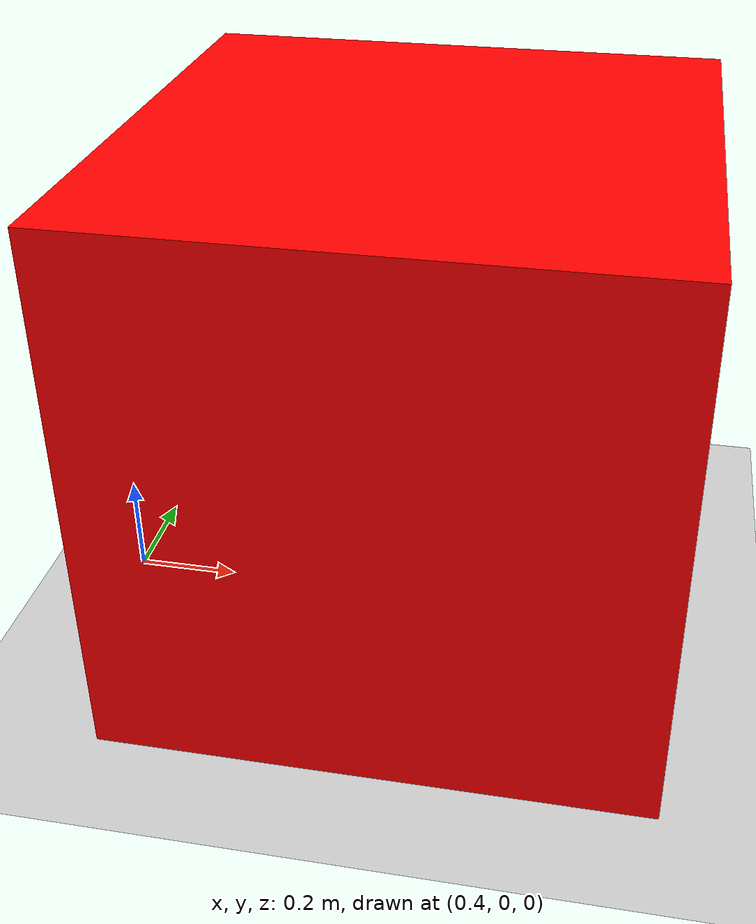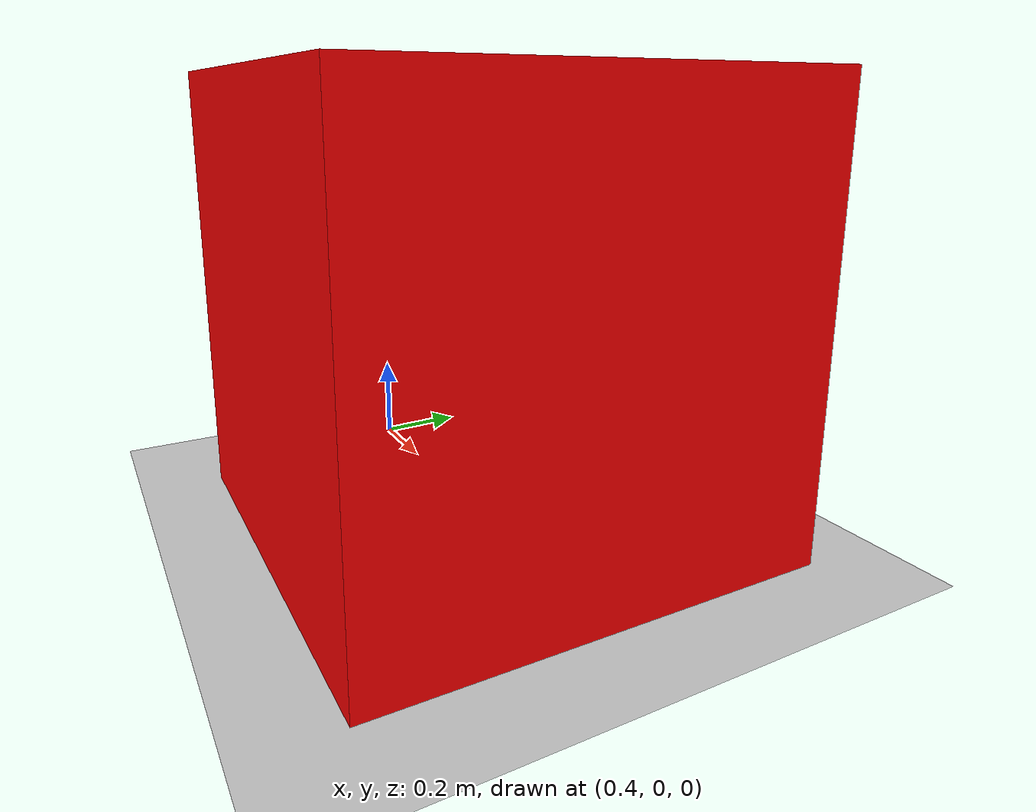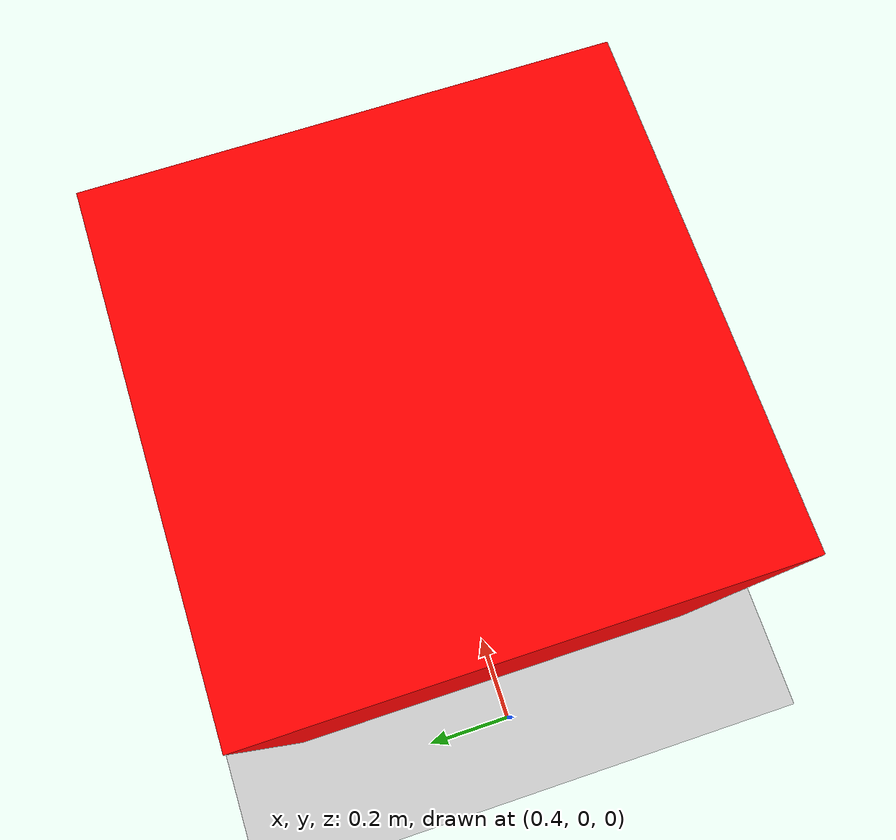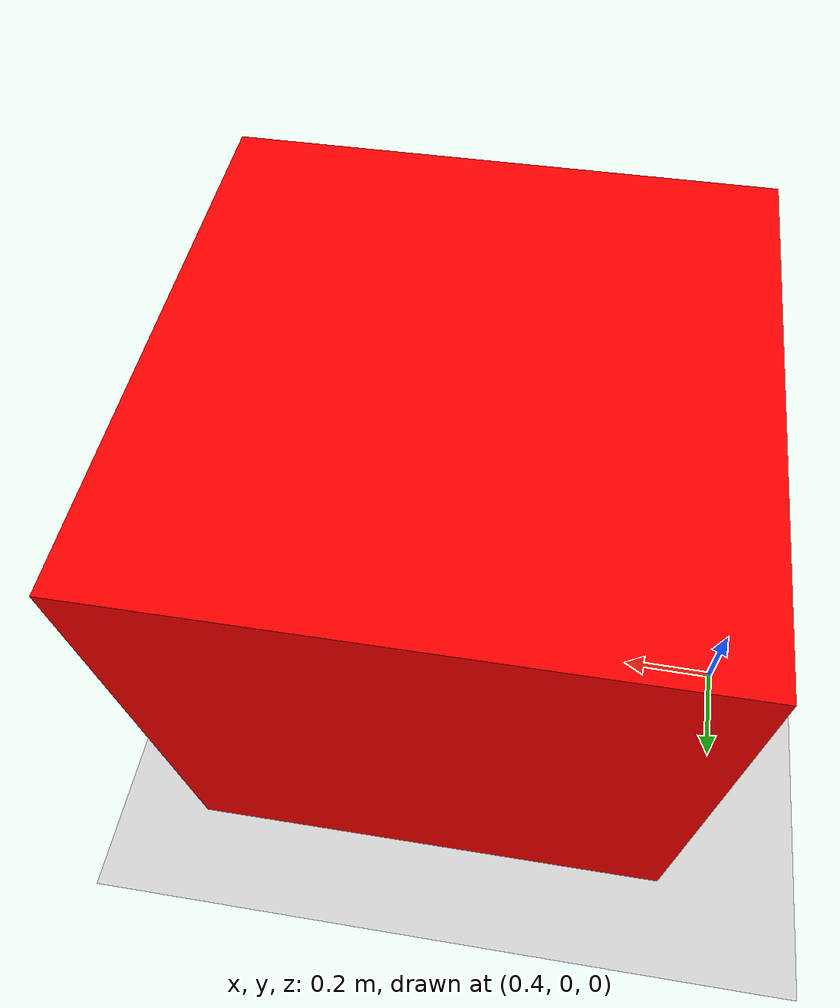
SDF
<?xml version="1.0" ?>

<!-- SDF VERSION: Gazebo Ionic ile uyumlu versiyon -->
<!-- Her Gazebo versiyonu farklı SDF versiyonları destekler -->
<sdf version="1.9">

  <!-- WORLD CONTAINER: Tüm simülasyon ortamını sarar -->
  <!-- name: World'ün benzersiz adı (ROS2 topic'lerinde kullanılır) -->
  <world name="my_world">

    <!-- SİSTEM PLUGIN'LERİ - Simülasyonun çalışması için gerekli -->

    <!-- PHYSICS SYSTEM: Fizik hesaplamalarını yapar -->
    <!-- filename: Gazebo'nun physics plugin'inin dosya adı -->
    <!-- name: Plugin'in benzersiz adı (namespace için) -->
    <plugin filename="gz-sim-physics-system" name="gz::sim::systems::Physics"></plugin>

    <!-- USER COMMANDS SYSTEM: Kullanıcı etkileşimi için -->
    <!-- GUI'den nesneleri hareket ettirme, seçme vs. -->
    <plugin filename="gz-sim-user-commands-system" name="gz::sim::systems::UserCommands"></plugin>

    <!-- SCENE BROADCASTER: 3D sahne bilgilerini yayınlar -->
    <!-- RViz2 ve diğer görselleştirme araçları için gerekli -->
    <plugin filename="gz-sim-scene-broadcaster-system" name="gz::sim::systems::SceneBroadcaster"></plugin>

    <!-- AYDINLATMA - Dünya aydınlatması -->

    <!-- DIRECTIONAL LIGHT: Güneş ışığı benzeri paralel ışık -->
    <!-- type="directional": Işık kaynağı sonsuz uzakta, ışınlar paralel -->
    <light type="directional" name="sun">
      <!-- POSE: Işığın pozisyonu (x y z roll pitch yaw) -->
      <!-- z=10: 10 metre yükseklikte -->
      <pose>0 0 10 0 0 0</pose>

      <!-- DIRECTION: Işığın yönü (x y z vector) -->
      <!-- (-0.5, 0.1, -0.9): Yukarıdan aşağıya doğru eğik -->
      <direction>-0.5 0.1 -0.9</direction>

      <!-- DIFFUSE: Yayılı ışık rengi (R G B A) -->
      <!-- (1.0 1.0 1.0 1): Beyaz renk, tam opaklık -->
      <diffuse>1.0 1.0 1.0 1</diffuse>
    </light>

    <!-- FİZİK AYARLARI -->

    <!-- GRAVITY: Yerçekimi vektörü (x y z m/s²) -->
    <!-- (0 0 -9.81): Z ekseninde aşağı doğru, Dünya yerçekimi -->
    <gravity>0 0 -9.81</gravity>

    <!-- ZEMİN MODELİ -->

    <!-- MODEL: Gazebo'da her nesne bir model'dir -->
    <!-- name: Modelin benzersiz adı (topic'lerde kullanılır) -->
    <model name="ground">

      <!-- STATIC: True = hareket etmez, sonsuz kütleli -->
      <!-- Zemin için ideal çünkü yerinde kalmalı -->
      <static>true</static>

      <!-- LINK: Modelin fiziksel parçası -->
      <!-- Her model en az bir link içermeli -->
      <link name="ground_link">

        <!-- COLLISION: Fizik hesaplamaları için geometri -->
        <!-- Diğer nesneler bununla çarpışır -->
        <collision name="ground_collision">
          <geometry>
            <!-- PLANE: Sonsuz düz yüzey -->
            <!-- normal: Yüzeyin normal vektörü (0 0 1 = yukarı bakan) -->
            <plane>
              <normal>0 0 1</normal>
              <!-- size: Görünen boyut (x y metre) -->
              <size>10 10</size>
            </plane>
          </geometry>
        </collision>

        <!-- VISUAL: Ekranda nasıl görüneceği -->
        <!-- Collision'dan farklı olabilir (performans için) -->
        <visual name="ground_visual">
          <geometry>
            <!-- Collision ile aynı geometri kullanıyoruz -->
            <plane>
              <normal>0 0 1</normal>
              <size>10 10</size>
            </plane>
          </geometry>

          <!-- MATERIAL: Renk ve yüzey özellikleri -->
          <material>
            <!-- ambient: Çevresel ışık rengi (R G B A) -->
            <ambient>0.8 0.8 0.8 1</ambient>  <!-- Açık gri -->
            <!-- diffuse: Yayılı ışık rengi -->
            <diffuse>0.8 0.8 0.8 1</diffuse>
          </material>
        </visual>

      </link>
    </model>

    <!-- KIRMIZI KUTU MODELİ -->

    <model name="box">

      <!-- POSE: Modelin pozisyonu ve rotasyonu -->
      <!-- (x=1, y=0, z=0.5): 1 metre sağda, 0.5 metre yüksekte -->
      <!-- (roll=0, pitch=0, yaw=0): Rotasyon yok -->
      <pose>1 0 0.5 0 0 0</pose>

      <link name="box_link">

        <!-- COLLISION: Fizik için kutu geometrisi -->
        <collision name="box_collision">
          <geometry>
            <!-- BOX: Dikdörtgen prizma -->
            <!-- size: x, y, z boyutları (metre) -->
            <box><size>1 1 1</size></box>  <!-- 1x1x1 metre küp -->
          </geometry>
        </collision>

        <!-- VISUAL: Görsel için aynı geometri -->
        <visual name="box_visual">
          <geometry>
            <box><size>1 1 1</size></box>
          </geometry>

          <!-- KIRMIZI MATERIAL -->
          <material>
            <!-- ambient: (1.0 0.0 0.0 1) = Kırmızı -->
            <ambient>1.0 0.0 0.0 1</ambient>
            <diffuse>1.0 0.0 0.0 1</diffuse>
          </material>
        </visual>

        <!-- INERTIAL: Fizik için kütle ve atalet özellikleri -->
        <!-- mass: Nesnenin kütlesi (kg) -->
        <inertial>
          <mass>1.0</mass>  <!-- 1 kilogram -->

          <!-- NOT: İnertia tensörü eksik - Gazebo otomatik hesaplayacak -->
          <!-- Küp için standart inertia: I = (1/6) * m * s² -->
        </inertial>

      </link>
    </model>

  </world>
</sdf>
